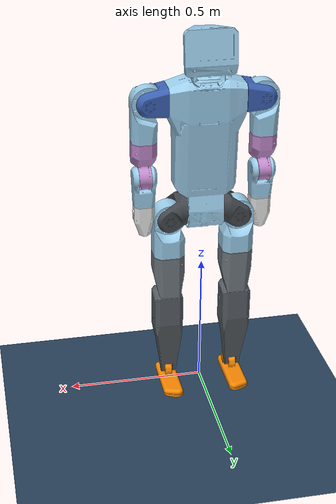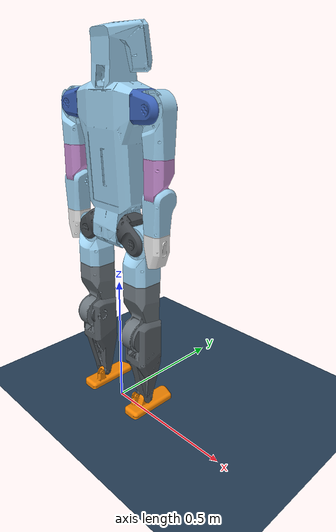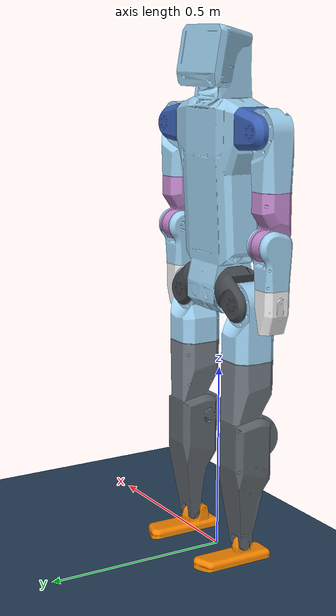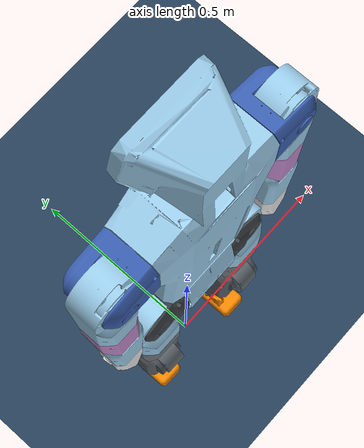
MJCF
<mujoco model="robot scene">
  <include file="robot.mjcf"/>

  <statistic center="0.15 0.1 0.38" extent=".8" meansize="0.05"/>

  <visual>
    <headlight diffuse="0.6 0.6 0.6" ambient="0.3 0.3 0.3" specular="0 0 0"/>
    <rgba haze="0.15 0.25 0.35 1"/>
    <global azimuth="220" elevation="-10"/>
    <quality shadowsize="8192"/>
  </visual>

  <asset>
    <texture type="skybox" builtin="gradient" rgb1="0.3 0.5 0.7" rgb2="0 0 0" width="512" height="3072"/>
    <texture type="2d" name="groundplane" builtin="checker" mark="edge" rgb1="0.2 0.3 0.4" rgb2="0.1 0.2 0.3"
      markrgb="0.8 0.8 0.8" width="300" height="300"/>
    <material name="groundplane" texture="groundplane" texuniform="true" texrepeat="5 5" reflectance="0.2"/>
  </asset>

  <worldbody>
    <geom name="floor" size="0 0 0.05" type="plane" material="groundplane"/>
  </worldbody>
</mujoco>

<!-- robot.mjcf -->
<mujoco model="kbot-v2">
  <default>
    <default class="robot">
      <default class="motor_00">
        <joint armature="0.0005" frictionloss="0.1" actuatorfrcrange="-14.0 14.0" />
        <motor ctrlrange="-14.0 14.0" />
      </default>
      <default class="motor_02">
        <joint armature="0.002" frictionloss="0.1" actuatorfrcrange="-17.0 17.0" />
        <motor ctrlrange="-17.0 17.0" />
      </default>
      <default class="motor_03">
        <joint armature="0.005" frictionloss="0.3" actuatorfrcrange="-60.0 60.0" />
        <motor ctrlrange="-60.0 60.0" />
      </default>
      <default class="motor_04">
        <joint armature="0.007" frictionloss="0.1" actuatorfrcrange="-120.0 120.0" />
        <motor ctrlrange="-120.0 120.0" />
      </default>
      <default class="visual">
        <geom material="visualgeom" contype="0" conaffinity="0" group="2" />
      </default>
      <default class="collision">
        <geom condim="6" friction="0.8 0.02 0.01" group="3" />
      </default>
    </default>
  </default>

  <compiler angle="radian" />

  <asset>
    <material name="floating_base_link_material" rgba="1 0 0 1" />
    <material name="KB_B_102B_TORSO_BOTTOM_material" rgba="0.615686 0.811765 0.929412 1" />
    <material name="YOKE_STOP_INNER_material" rgba="0.231373 0.380392 0.705882 1" />
    <material name="KB_D_102R_R_Hip_Yoke_Drive_material" rgba="0.262745 0.282353 0.301961 1" />
    <material name="KB_D_301R_R_Femur_Lower_Drive_material" rgba="0.439216 0.474510 0.501961 1" />
    <material name="R_Bicep_Lower_Drive_material" rgba="0.764706 0.545098 0.803922 1" />
    <material name="KB_D_401R_R_Shin_Drive_material" rgba="0.349020 0.376471 0.400000 1" />
    <material name="KB_C_501X_Bayonet_Adapter_Hard_Stop_material" rgba="0.917647 0.917647 0.917647 1" />
    <material name="KB_D_501R_R_LEG_FOOT_material" rgba="0.972549 0.529412 0.003922 1" />
    <material name="default_material" rgba="0.7 0.7 0.7 1" />
    <mesh name="KB_B_102B_TORSO_BOTTOM.collision.stl" file="meshes/KB_B_102B_TORSO_BOTTOM.collision.stl" />
    <mesh name="KB_B_102B_TORSO_BOTTOM.stl" file="meshes/KB_B_102B_TORSO_BOTTOM.stl" />
    <mesh name="YOKE_STOP_INNER.stl" file="meshes/YOKE_STOP_INNER.stl" />
    <mesh name="RS03_5.collision.stl" file="meshes/RS03_5.collision.stl" />
    <mesh name="RS03_5.stl" file="meshes/RS03_5.stl" />
    <mesh name="R_Bicep_Lower_Drive.stl" file="meshes/R_Bicep_Lower_Drive.stl" />
    <mesh name="R_Forearm_Upper_Structural.stl" file="meshes/R_Forearm_Upper_Structural.stl" />
    <mesh name="KB_C_501X_Bayonet_Adapter_Hard_Stop.collision.stl" file="meshes/KB_C_501X_Bayonet_Adapter_Hard_Stop.collision.stl" />
    <mesh name="KB_C_501X_Bayonet_Adapter_Hard_Stop.stl" file="meshes/KB_C_501X_Bayonet_Adapter_Hard_Stop.stl" />
    <mesh name="YOKE_STOP_INNER_2.stl" file="meshes/YOKE_STOP_INNER_2.stl" />
    <mesh name="RS03_6.collision.stl" file="meshes/RS03_6.collision.stl" />
    <mesh name="RS03_6.stl" file="meshes/RS03_6.stl" />
    <mesh name="L_Bicep_Lower_Drive.stl" file="meshes/L_Bicep_Lower_Drive.stl" />
    <mesh name="L_Forearm_Upper_Drive.stl" file="meshes/L_Forearm_Upper_Drive.stl" />
    <mesh name="KB_C_501X_Bayonet_Adapter_Hard_Stop_2.collision.stl" file="meshes/KB_C_501X_Bayonet_Adapter_Hard_Stop_2.collision.stl" />
    <mesh name="KB_C_501X_Bayonet_Adapter_Hard_Stop_2.stl" file="meshes/KB_C_501X_Bayonet_Adapter_Hard_Stop_2.stl" />
    <mesh name="KB_D_102R_R_Hip_Yoke_Drive.stl" file="meshes/KB_D_102R_R_Hip_Yoke_Drive.stl" />
    <mesh name="RS03_3.collision.stl" file="meshes/RS03_3.collision.stl" />
    <mesh name="RS03_3.stl" file="meshes/RS03_3.stl" />
    <mesh name="KB_D_301R_R_Femur_Lower_Drive.stl" file="meshes/KB_D_301R_R_Femur_Lower_Drive.stl" />
    <mesh name="KB_D_401R_R_Shin_Drive.collision.stl" file="meshes/KB_D_401R_R_Shin_Drive.collision.stl" />
    <mesh name="KB_D_401R_R_Shin_Drive.stl" file="meshes/KB_D_401R_R_Shin_Drive.stl" />
    <mesh name="KB_D_501R_R_LEG_FOOT.collision.stl" file="meshes/KB_D_501R_R_LEG_FOOT.collision.stl" />
    <mesh name="KB_D_501R_R_LEG_FOOT.stl" file="meshes/KB_D_501R_R_LEG_FOOT.stl" />
    <mesh name="KB_D_102L_L_Hip_Yoke_Drive.stl" file="meshes/KB_D_102L_L_Hip_Yoke_Drive.stl" />
    <mesh name="RS03_4.collision.stl" file="meshes/RS03_4.collision.stl" />
    <mesh name="RS03_4.stl" file="meshes/RS03_4.stl" />
    <mesh name="KB_D_301L_L_Femur_Lower_Drive.stl" file="meshes/KB_D_301L_L_Femur_Lower_Drive.stl" />
    <mesh name="KB_D_402L_L_Shin_Idle.collision.stl" file="meshes/KB_D_402L_L_Shin_Idle.collision.stl" />
    <mesh name="KB_D_402L_L_Shin_Idle.stl" file="meshes/KB_D_402L_L_Shin_Idle.stl" />
    <mesh name="KB_D_501L_L_LEG_FOOT.collision.stl" file="meshes/KB_D_501L_L_LEG_FOOT.collision.stl" />
    <mesh name="KB_D_501L_L_LEG_FOOT.stl" file="meshes/KB_D_501L_L_LEG_FOOT.stl" />
    <mesh name="imu.stl" file="meshes/imu.stl" />
  </asset>

  <worldbody>
    <body name="floating_base_link" pos="0.00000000 0.00000000 0.80024304" childclass="robot">
      <freejoint name="floating_base" />
      <geom name="floating_base_link_visual" material="floating_base_link_material" type="sphere" size="0.01" class="visual" />
      <body name="KB_B_102B_TORSO_BOTTOM">
        <inertial pos="0.000403 0.002187 0.165184" mass="15.673149" diaginertia="0.64165 0.678247 0.075462" />
        <geom name="KB_B_102B_TORSO_BOTTOM_collision" type="mesh" mesh="KB_B_102B_TORSO_BOTTOM.collision.stl" class="collision" />
        <geom name="KB_B_102B_TORSO_BOTTOM_visual" material="KB_B_102B_TORSO_BOTTOM_material" type="mesh" mesh="KB_B_102B_TORSO_BOTTOM.stl" class="visual" />
        <body name="YOKE_STOP_INNER" pos="0.120950 -0.000737 0.337507" quat="0.5000001633974483 -0.4999999999999733 -0.49999983660255165 0.4999999999999733">
          <joint name="right_shoulder_pitch_03" type="hinge" class="motor_03" range="-2.617994 2.094395" axis="0 0 1" />
          <inertial pos="0.006667 -0.003840 -0.041983" mass="0.585630" diaginertia="0.001005 0.001376 0.00114" />
          <geom name="YOKE_STOP_INNER_visual" material="YOKE_STOP_INNER_material" type="mesh" mesh="YOKE_STOP_INNER.stl" class="visual" />
          <body name="RS03_5" pos="0.024250 0 -0.080000" quat="-1.2247452309842457e-07 -0.7071068967259713 1.22474483074382e-07 -0.7071066656470838">
            <joint name="right_shoulder_roll_03" type="hinge" class="motor_03" range="-0.488692 1.658063" axis="0 0 -1.0" />
            <inertial pos="-0.005670 -0.043712 -0.030222" mass="1.888573" diaginertia="0.007759 0.002169 0.008277" />
            <geom name="RS03_5_collision" type="mesh" mesh="RS03_5.collision.stl" class="collision" />
            <geom name="RS03_5_visual" material="KB_B_102B_TORSO_BOTTOM_material" type="mesh" mesh="RS03_5.stl" class="visual" />
            <body name="R_Bicep_Lower_Drive" pos="-0.013000 -0.142000 -0.030250" quat="0.7071068967259818 -0.7071066656470943 0.0 0.0">
              <joint name="right_shoulder_yaw_02" type="hinge" class="motor_02" range="-1.745329 1.745329" axis="0 0 1" />
              <inertial pos="0.001741 -0.003128 -0.096105" mass="0.863923" diaginertia="0.003004 0.002789 0.000894" />
              <geom name="R_Bicep_Lower_Drive_visual" material="R_Bicep_Lower_Drive_material" type="mesh" mesh="R_Bicep_Lower_Drive.stl" class="visual" />
              <body name="R_Forearm_Upper_Structural" pos="0.018500 -0.010000 -0.137000" quat="0.5000001633974483 -0.4999999999999733 -0.49999983660255165 0.4999999999999733">
                <joint name="right_elbow_02" type="hinge" class="motor_02" range="0 2.530727" axis="0 0 1" />
                <inertial pos="0.016090 0.059049 0.014470" mass="0.676940" diaginertia="0.001393 0.00069 0.001383" />
                <geom name="R_Forearm_Upper_Structural_visual" material="KB_B_102B_TORSO_BOTTOM_material" type="mesh" mesh="R_Forearm_Upper_Structural.stl" class="visual" />
                <body name="KB_C_501X_Bayonet_Adapter_Hard_Stop" pos="0.017350 0.107700 0.018000" quat="0.5000001633974483 0.4999999999999733 0.4999999999999733 -0.49999983660255165">
                  <joint name="right_wrist_02" type="hinge" class="motor_02" range="-1.745329 1.745329" axis="0 0 1" />
                  <inertial pos="-0.002571 0.000004 -0.039371" mass="0.571799" diaginertia="0.00075 0.00072 0.000581" />
                  <geom name="KB_C_501X_Bayonet_Adapter_Hard_Stop_collision" type="mesh" mesh="KB_C_501X_Bayonet_Adapter_Hard_Stop.collision.stl" class="collision" />
                  <geom name="KB_C_501X_Bayonet_Adapter_Hard_Stop_visual" material="KB_C_501X_Bayonet_Adapter_Hard_Stop_material" type="mesh" mesh="KB_C_501X_Bayonet_Adapter_Hard_Stop.stl" class="visual" />
                </body>
              </body>
            </body>
          </body>
        </body>
        <body name="YOKE_STOP_INNER_2" pos="-0.120950 -0.000737 0.337507" quat="0.5000001633974483 0.4999999999999733 0.49999983660255165 0.4999999999999733">
          <joint name="left_shoulder_pitch_03" type="hinge" class="motor_03" range="-2.094395 2.617994" axis="0 0 1" />
          <inertial pos="0.006762 0.003839 -0.041982" mass="0.585652" diaginertia="0.001005 0.00137 0.001134" />
          <geom name="YOKE_STOP_INNER_2_visual" material="YOKE_STOP_INNER_material" type="mesh" mesh="YOKE_STOP_INNER_2.stl" class="visual" />
          <body name="RS03_6" pos="0.024250 0 -0.080000" quat="0.7071068967259818 0.0 0.7071066656470943 0.0">
            <joint name="left_shoulder_roll_03" type="hinge" class="motor_03" range="-1.658063 0.488692" axis="0 0 -1.0" />
            <inertial pos="0.005670 -0.043728 -0.030222" mass="1.888599" diaginertia="0.007765 0.002169 0.008283" />
            <geom name="RS03_6_collision" type="mesh" mesh="RS03_6.collision.stl" class="collision" />
            <geom name="RS03_6_visual" material="KB_B_102B_TORSO_BOTTOM_material" type="mesh" mesh="RS03_6.stl" class="visual" />
            <body name="L_Bicep_Lower_Drive" pos="0.013000 -0.142000 -0.030250" quat="0.7071068967259818 -0.7071066656470943 0.0 0.0">
              <joint name="left_shoulder_yaw_02" type="hinge" class="motor_02" range="-1.745329 1.745329" axis="0 0 1" />
              <inertial pos="-0.001724 -0.003123 -0.096088" mass="0.864297" diaginertia="0.003004 0.00279 0.000895" />
              <geom name="L_Bicep_Lower_Drive_visual" material="R_Bicep_Lower_Drive_material" type="mesh" mesh="L_Bicep_Lower_Drive.stl" class="visual" />
              <body name="L_Forearm_Upper_Drive" pos="-0.018500 -0.010000 -0.137000" quat="0.5000001633974483 0.4999999999999733 0.49999983660255165 0.4999999999999733">
                <joint name="left_elbow_02" type="hinge" class="motor_02" range="-2.530727 0" axis="0 0 1" />
                <inertial pos="0.016089 -0.059049 0.014469" mass="0.676937" diaginertia="0.001393 0.00069 0.001383" />
                <geom name="L_Forearm_Upper_Drive_visual" material="KB_B_102B_TORSO_BOTTOM_material" type="mesh" mesh="L_Forearm_Upper_Drive.stl" class="visual" />
                <body name="KB_C_501X_Bayonet_Adapter_Hard_Stop_2" pos="0.017350 -0.106500 0.018000" quat="0.5000001633974483 0.4999999999999733 -0.4999999999999733 0.49999983660255165">
                  <joint name="left_wrist_02" type="hinge" class="motor_02" range="-1.745329 1.745329" axis="0 0 -1" />
                  <inertial pos="0.002571 0.000004 0.040871" mass="0.571799" diaginertia="0.00075 0.00072 0.000581" />
                  <geom name="KB_C_501X_Bayonet_Adapter_Hard_Stop_2_collision" type="mesh" mesh="KB_C_501X_Bayonet_Adapter_Hard_Stop_2.collision.stl" class="collision" />
                  <geom name="KB_C_501X_Bayonet_Adapter_Hard_Stop_2_visual" material="KB_C_501X_Bayonet_Adapter_Hard_Stop_material" type="mesh" mesh="KB_C_501X_Bayonet_Adapter_Hard_Stop_2.stl" class="visual" />
                </body>
              </body>
            </body>
          </body>
        </body>
        <body name="KB_D_102R_R_Hip_Yoke_Drive" pos="0.056000 -0.000737 -0.072993" quat="0.5000001633974483 0.4999999999999733 -0.49999983660255165 -0.4999999999999733">
          <joint name="right_hip_pitch_04" type="hinge" class="motor_04" range="-1.919862 1.570796" axis="0 0 1" />
          <inertial pos="-0.005187 -0.002374 -0.039157" mass="0.710534" diaginertia="0.001285 0.00155 0.001729" />
          <geom name="KB_D_102R_R_Hip_Yoke_Drive_visual" material="KB_D_102R_R_Hip_Yoke_Drive_material" type="mesh" mesh="KB_D_102R_R_Hip_Yoke_Drive.stl" class="visual" />
          <body name="RS03_3" pos="-0.028250 -0.030000 -0.071000" quat="0.7071068967259818 0.0 -0.7071066656470943 0.0">
            <joint name="right_hip_roll_03" type="hinge" class="motor_03" range="0 2.268928" axis="0 0 -1.0" />
            <inertial pos="-0.000677 -0.058256 -0.028289" mass="2.590316" diaginertia="0.011063 0.003804 0.01158" />
            <geom name="RS03_3_collision" type="mesh" mesh="RS03_3.collision.stl" class="collision" />
            <geom name="RS03_3_visual" material="KB_B_102B_TORSO_BOTTOM_material" type="mesh" mesh="RS03_3.stl" class="visual" />
            <body name="KB_D_301R_R_Femur_Lower_Drive" pos="0 -0.142750 -0.029800" quat="0.7071068967259818 0.7071066656470943 0.0 0.0">
              <joint name="right_hip_yaw_03" type="hinge" class="motor_03" range="-1.570796 1.570796" axis="0 0 -1" />
              <inertial pos="0.000139 -0.010511 0.162474" mass="2.556834" diaginertia="0.018026 0.016368 0.004729" />
              <geom name="KB_D_301R_R_Femur_Lower_Drive_visual" material="KB_D_301R_R_Femur_Lower_Drive_material" type="mesh" mesh="KB_D_301R_R_Femur_Lower_Drive.stl" class="visual" />
              <body name="KB_D_401R_R_Shin_Drive" pos="0.020600 -0.021000 0.212000" quat="0.5000001633974483 0.4999999999999733 -0.49999983660255165 -0.4999999999999733">
                <joint name="right_knee_04" type="hinge" class="motor_04" range="-2.705260 0" axis="0 0 1" />
                <inertial pos="-0.026847 0.095560 0.020795" mass="2.016717" diaginertia="0.017602 0.003759 0.017275" />
                <geom name="KB_D_401R_R_Shin_Drive_collision" type="mesh" mesh="KB_D_401R_R_Shin_Drive.collision.stl" class="collision" />
                <geom name="KB_D_401R_R_Shin_Drive_visual" material="KB_D_401R_R_Shin_Drive_material" type="mesh" mesh="KB_D_401R_R_Shin_Drive.stl" class="visual" />
                <body name="KB_D_501R_R_LEG_FOOT" pos="-0.031300 0.292500 0.034000">
                  <joint name="right_ankle_02" type="hinge" class="motor_02" range="-0.296706 0.785398" axis="0 0 1" />
                  <inertial pos="-0.013265 0.028578 -0.016056" mass="0.492747" diaginertia="0.000283 0.00156 0.001485" />
                  <geom name="KB_D_501R_R_LEG_FOOT_collision" type="mesh" mesh="KB_D_501R_R_LEG_FOOT.collision.stl" class="collision" />
                  <geom name="KB_D_501R_R_LEG_FOOT_visual" material="KB_D_501R_R_LEG_FOOT_material" type="mesh" mesh="KB_D_501R_R_LEG_FOOT.stl" class="visual" />
                </body>
              </body>
            </body>
          </body>
        </body>
        <body name="KB_D_102L_L_Hip_Yoke_Drive" pos="-0.056000 -0.000737 -0.072993" quat="0.5000001633974483 -0.4999999999999733 0.49999983660255165 -0.4999999999999733">
          <joint name="left_hip_pitch_04" type="hinge" class="motor_04" range="-1.570796 1.919862" axis="0 0 1" />
          <inertial pos="-0.005269 0.002433 -0.039157" mass="0.710534" diaginertia="0.001287 0.001544 0.001726" />
          <geom name="KB_D_102L_L_Hip_Yoke_Drive_visual" material="KB_D_102R_R_Hip_Yoke_Drive_material" type="mesh" mesh="KB_D_102L_L_Hip_Yoke_Drive.stl" class="visual" />
          <body name="RS03_4" pos="-0.028250 0.030000 -0.071000" quat="-1.2247452309842457e-07 0.7071068967259713 -1.22474483074382e-07 -0.7071066656470838">
            <joint name="left_hip_roll_03" type="hinge" class="motor_03" range="-2.268928 0" axis="0 0 -1.0" />
            <inertial pos="0.000677 -0.058257 -0.028289" mass="2.590429" diaginertia="0.011064 0.003804 0.01158" />
            <geom name="RS03_4_collision" type="mesh" mesh="RS03_4.collision.stl" class="collision" />
            <geom name="RS03_4_visual" material="KB_B_102B_TORSO_BOTTOM_material" type="mesh" mesh="RS03_4.stl" class="visual" />
            <body name="KB_D_301L_L_Femur_Lower_Drive" pos="0 -0.142750 -0.029800" quat="0.7071068967259818 0.7071066656470943 0.0 0.0">
              <joint name="left_hip_yaw_03" type="hinge" class="motor_03" range="-1.570796 1.570796" axis="0 0 -1" />
              <inertial pos="-0.000139 -0.010511 0.162476" mass="2.556767" diaginertia="0.018025 0.016367 0.004728" />
              <geom name="KB_D_301L_L_Femur_Lower_Drive_visual" material="KB_D_301R_R_Femur_Lower_Drive_material" type="mesh" mesh="KB_D_301L_L_Femur_Lower_Drive.stl" class="visual" />
              <body name="KB_D_402L_L_Shin_Idle" pos="0.043200 -0.021000 0.212000" quat="0.5000001633974483 -0.4999999999999733 0.49999983660255165 -0.4999999999999733">
                <joint name="left_knee_04" type="hinge" class="motor_04" range="0 2.705260" axis="0 0 1.0" />
                <inertial pos="-0.026848 -0.095563 -0.042713" mass="2.016574" diaginertia="0.017575 0.003732 0.017275" />
                <geom name="KB_D_402L_L_Shin_Idle_collision" type="mesh" mesh="KB_D_402L_L_Shin_Idle.collision.stl" class="collision" />
                <geom name="KB_D_402L_L_Shin_Idle_visual" material="KB_D_401R_R_Shin_Drive_material" type="mesh" mesh="KB_D_402L_L_Shin_Idle.stl" class="visual" />
                <body name="KB_D_501L_L_LEG_FOOT" pos="-0.031300 -0.292500 -0.057200">
                  <joint name="left_ankle_02" type="hinge" class="motor_02" range="-0.785398 0.296706" axis="0 0 1.0" />
                  <inertial pos="-0.013265 -0.028578 0.011944" mass="0.492748" diaginertia="0.000283 0.00156 0.001485" />
                  <geom name="KB_D_501L_L_LEG_FOOT_collision" type="mesh" mesh="KB_D_501L_L_LEG_FOOT.collision.stl" class="collision" />
                  <geom name="KB_D_501L_L_LEG_FOOT_visual" material="KB_D_501R_R_LEG_FOOT_material" type="mesh" mesh="KB_D_501L_L_LEG_FOOT.stl" class="visual" />
                </body>
              </body>
            </body>
          </body>
        </body>
        <body name="imu" pos="-0.028807 -0.009800 0.452404" quat="0.5000001633974483 0.4999999999999733 -0.49999983660255165 -0.4999999999999733">
          <inertial pos="0.012000 -0.014737 0.003000" mass="0.005700" diaginertia="1e-06 1e-06 2e-06" />
          <geom name="imu_visual" material="KB_B_102B_TORSO_BOTTOM_material" type="mesh" mesh="imu.stl" class="visual" />
          <site name="imu_site" quat="0.7071067811865476 0.0 0.0 0.7071067811865475" pos="0.0 0.0 0.0" />
        </body>
      </body>
      <site name="floating_base_link_site" />
      <camera name="front_camera" mode="track" fovy="90.0" quat="4.329780281177467e-17 4.329780281177466e-17 0.7071067811865475 0.7071067811865476" pos="0.0 2.0 0.5" />
      <camera name="side_camera" mode="track" fovy="90.0" quat="-0.5 -0.4999999999999999 0.5 0.5000000000000001" pos="-2.0 0.0 0.5" />
    </body>
  </worldbody>

  <actuator>
    <motor name="right_shoulder_pitch_03_ctrl" joint="right_shoulder_pitch_03" class="motor_03" />
    <motor name="right_shoulder_roll_03_ctrl" joint="right_shoulder_roll_03" class="motor_03" />
    <motor name="right_shoulder_yaw_02_ctrl" joint="right_shoulder_yaw_02" class="motor_02" />
    <motor name="right_elbow_02_ctrl" joint="right_elbow_02" class="motor_02" />
    <motor name="right_wrist_02_ctrl" joint="right_wrist_02" class="motor_02" />
    <motor name="left_shoulder_pitch_03_ctrl" joint="left_shoulder_pitch_03" class="motor_03" />
    <motor name="left_shoulder_roll_03_ctrl" joint="left_shoulder_roll_03" class="motor_03" />
    <motor name="left_shoulder_yaw_02_ctrl" joint="left_shoulder_yaw_02" class="motor_02" />
    <motor name="left_elbow_02_ctrl" joint="left_elbow_02" class="motor_02" />
    <motor name="left_wrist_02_ctrl" joint="left_wrist_02" class="motor_02" />
    <motor name="right_hip_pitch_04_ctrl" joint="right_hip_pitch_04" class="motor_04" />
    <motor name="right_hip_roll_03_ctrl" joint="right_hip_roll_03" class="motor_03" />
    <motor name="right_hip_yaw_03_ctrl" joint="right_hip_yaw_03" class="motor_03" />
    <motor name="right_knee_04_ctrl" joint="right_knee_04" class="motor_04" />
    <motor name="right_ankle_02_ctrl" joint="right_ankle_02" class="motor_02" />
    <motor name="left_hip_pitch_04_ctrl" joint="left_hip_pitch_04" class="motor_04" />
    <motor name="left_hip_roll_03_ctrl" joint="left_hip_roll_03" class="motor_03" />
    <motor name="left_hip_yaw_03_ctrl" joint="left_hip_yaw_03" class="motor_03" />
    <motor name="left_knee_04_ctrl" joint="left_knee_04" class="motor_04" />
    <motor name="left_ankle_02_ctrl" joint="left_ankle_02" class="motor_02" />
  </actuator>

  <contact>
    <exclude body1="KB_D_401R_R_Shin_Drive" body2="KB_D_501R_R_LEG_FOOT" />
    <exclude body1="KB_D_402L_L_Shin_Idle" body2="KB_D_501L_L_LEG_FOOT" />
  </contact>

  <sensor>
    <accelerometer name="imu_acc" site="imu_site" noise="0.01" />
    <gyro name="imu_gyro" site="imu_site" noise="0.01" />
    <magnetometer name="imu_mag" site="imu_site" noise="0.05" />
    <framepos name="base_link_pos" objtype="site" objname="imu_site" />
    <framequat name="base_link_quat" objtype="site" objname="imu_site" />
    <framelinvel name="base_link_vel" objtype="site" objname="imu_site" />
    <frameangvel name="base_link_ang_vel" objtype="site" objname="imu_site" />
  </sensor>
</mujoco>
